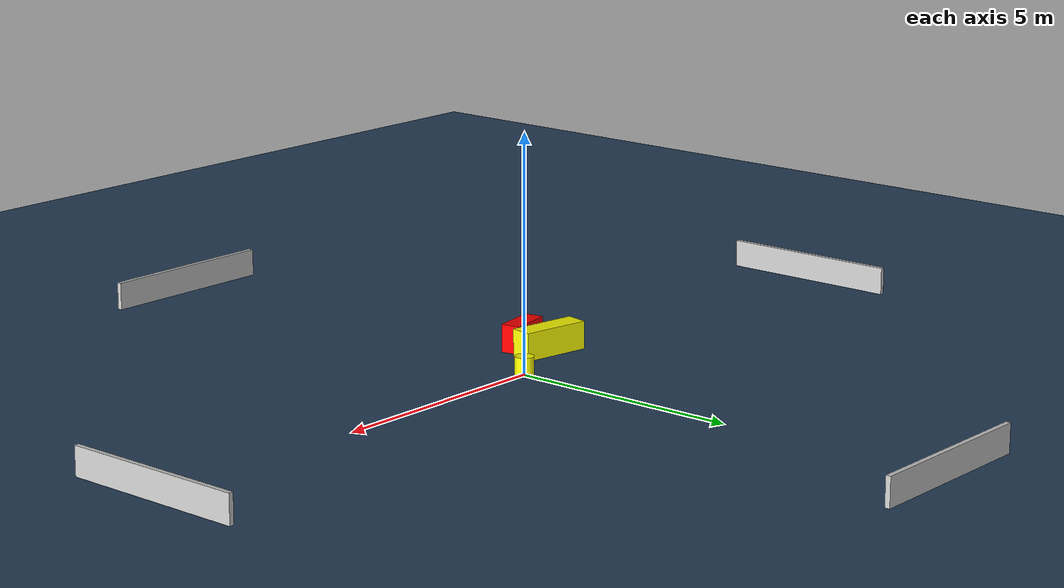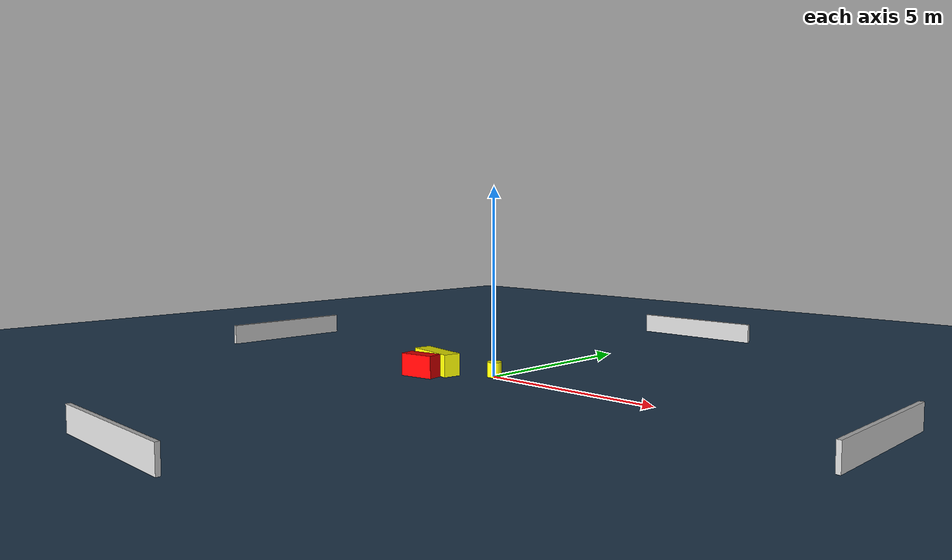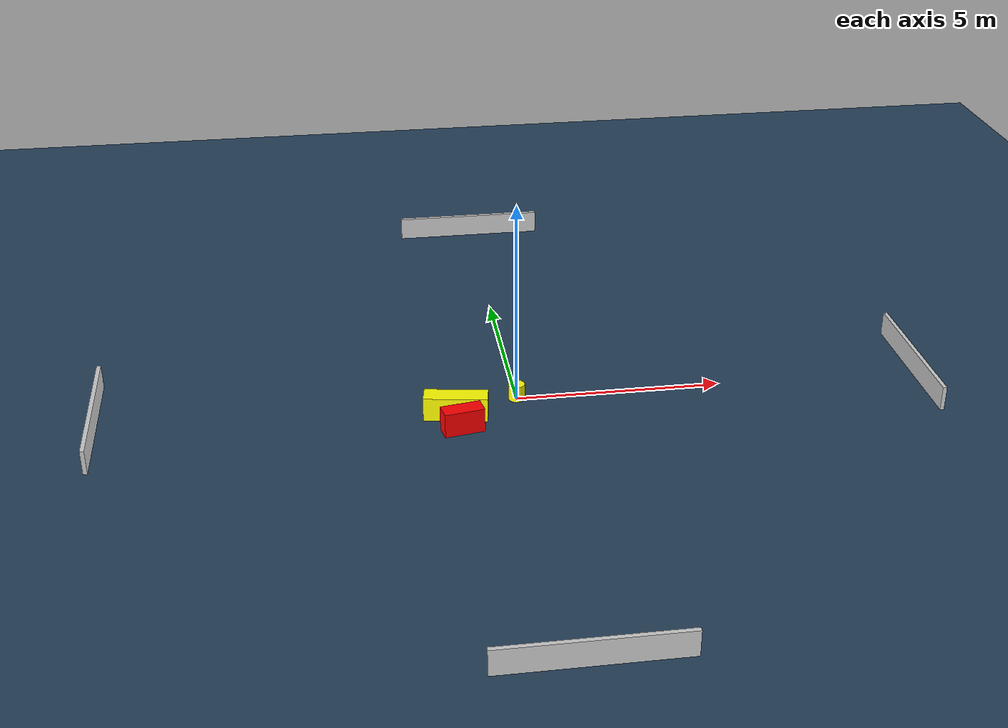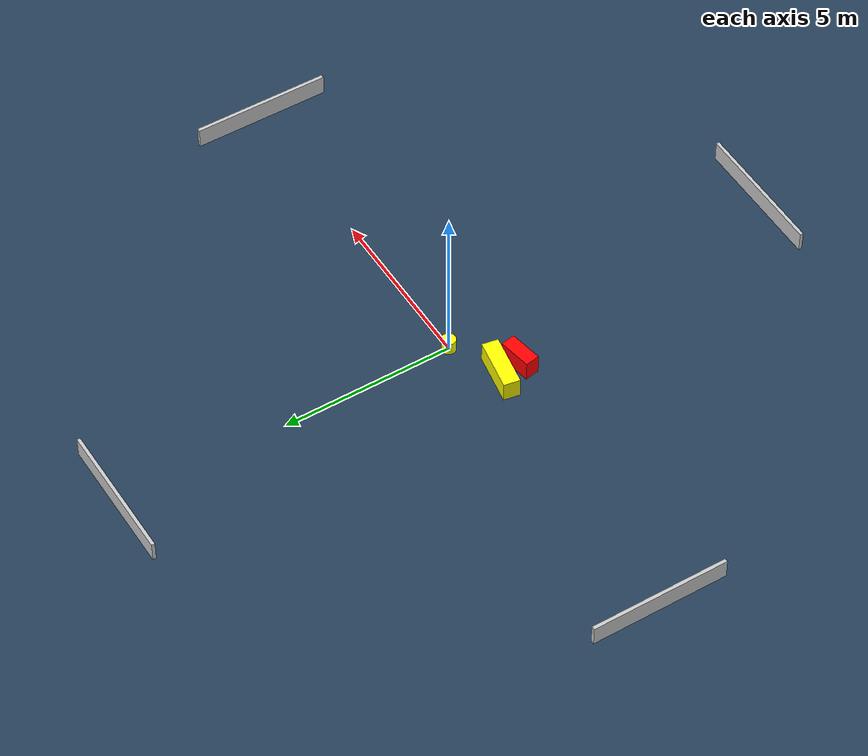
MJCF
<?xml version="1.0" ?>
<mujoco model="generated_environment">
  <option timestep="0.01" integrator="RK4" cone="elliptic"/>
  <default>
    <geom density="1"/>
  </default>
  <asset>
    <texture builtin="gradient" height="3072" name="skybox" rgb1="0.3 0.5 0.7" rgb2="0 0 0" type="skybox" width="512"/>
    <texture builtin="checker" height="300" name="groundplane" rgb1="0.2 0.3 0.4" rgb2="0.1 0.2 0.3" type="2d" width="300"/>
    <material name="groundplane" reflectance="0.2" texrepeat="5 5" texture="groundplane"/>
  </asset>
  <worldbody>
    <light dir="0 0 -1" directional="true" pos="0 0 1.5"/>
    <geom condim="3" friction="0.5 0.005 0.001" material="groundplane" name="floor" pos="0 0 0" size="0 0 0.05" type="plane"/>
    <body name="walls">
      <geom name="wall_1" condim="4" pos="-10.0 0.0 0.3" rgba="0.800000011920929 0.800000011920929 0.800000011920929 1.0" size="0.05 2.0 0.3" type="box"/>
      <geom name="wall_2" condim="4" pos="10.0 0.0 0.3" rgba="0.800000011920929 0.800000011920929 0.800000011920929 1.0" size="0.05 2.0 0.3" type="box"/>
      <geom name="wall_3" condim="4" pos="0.0 -10.0 0.3" rgba="0.800000011920929 0.800000011920929 0.800000011920929 1.0" size="2.0 0.05 0.3" type="box"/>
      <geom name="wall_4" condim="4" pos="0.0 10.0 0.3" rgba="0.800000011920929 0.800000011920929 0.800000011920929 1.0" size="2.0 0.05 0.3" type="box"/>
    </body>
    <body name="robot">
      <joint name="joint_x" type="slide" pos="0 0 0" axis="1 0 0"/>
      <joint name="joint_y" type="slide" pos="0 0 0" axis="0 1 0"/>
      <geom name="robot" type="cylinder" pos="0.0 0.0 0.2" size="0.2 0.2 0.0" mass="5.0" friction="1.0 0.005 0.0001" condim="4" rgba="1.0 1.0 0.0 1.0"/>
    </body>
    <body name="obstacle_1_movable">
      <geom name="obstacle_1_movable" condim="4" pos="-1.5445489687245 -0.6518503064891716 0.3" euler="0 0 260.211055414694" friction="0.0 0.005 0.001" rgba="1.0 1.0 0.0 1.0" size="0.23886734933869389 0.7601242800997867 0.3" type="box" mass="0.1"/>
      <joint type="free"/>
    </body>
    <body name="obstacle_2_static">
      <geom name="obstacle_2_static" condim="4" pos="-1.4575802102714532 -1.3050906877882948 0.3" euler="0 0 190.10696838825956" friction="0.0 0.005 0.001" rgba="1.0 0.0 0.0 1.0" size="0.48462891626347754 0.21046506568258627 0.3" type="box"/>
    </body>
  </worldbody>
  <actuator>
    <motor name="actuator_x" joint="joint_x" gear="1" ctrlrange="-1 1"/>
    <motor name="actuator_y" joint="joint_y" gear="1" ctrlrange="-1 1"/>
  </actuator>
</mujoco>
